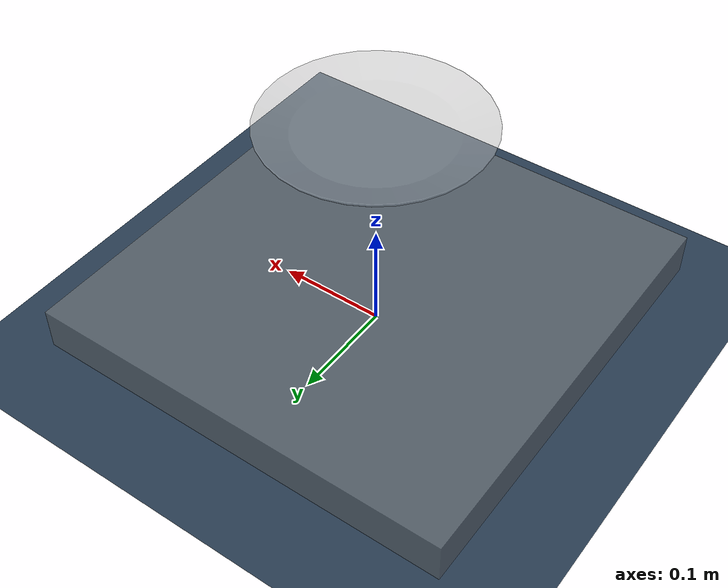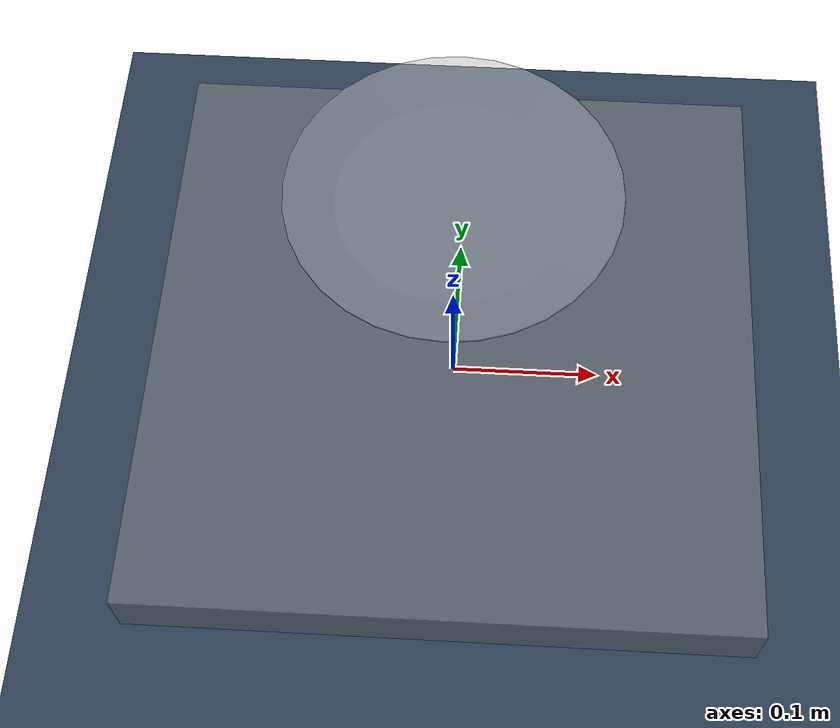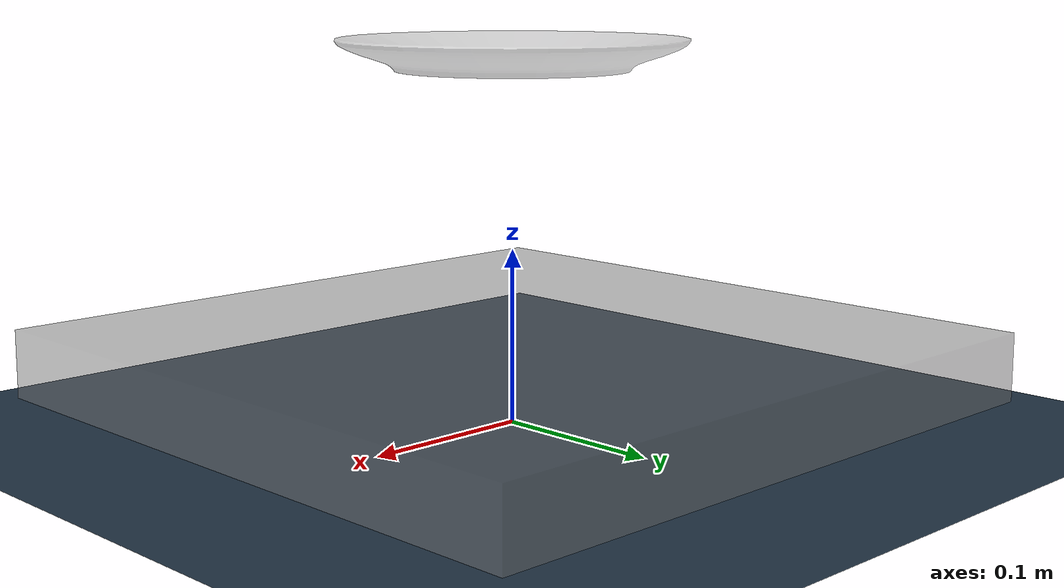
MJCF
<mujoco model="myrmex demo">
  <compiler meshdir="meshes"/>
  <statistic extent="1.5" meansize=".05"/>
  <option timestep="0.001" jacobian="sparse" gravity="0 0 -9.81"/>
  <size nconmax="3000" njmax="4000"/>
  <visual>
    <rgba haze="0.15 0.25 0.35 1"/>
    <quality shadowsize="4096"/>
    <map stiffness="700" shadowscale="0.5" fogstart="10" fogend="15" zfar="40" haze="0.3"/>
    <scale forcewidth="0.001" />
  </visual>

  <asset>
    <texture type="skybox" builtin="gradient" rgb1="0.3 0.5 0.7" rgb2="0 0 0" width="512" height="512"/>
    <texture name="texplane" type="2d" builtin="checker" rgb1=".2 .3 .4" rgb2=".1 0.15 0.2"
      width="512" height="512" mark="cross" markrgb=".8 .8 .8"/>
    <material name="matplane" reflectance="0.3" texture="texplane" texrepeat="1 1" texuniform="true"/>
    <mesh file="plate_8in_col.stl" scale="1 1 1"/>
  </asset>

  <custom>
    <!-- All custom parameters related to contact surfaces have the prefix cs:: -->
    <text name="cs::HydroelasticContactRepresentation" data="kTriangle"/>
    <numeric name="cs::VisualizeSurfaces" data="0"/>
    <!-- If cs::ApplyContactSurfaceForces is 0 Contact Surfaces are only computed for tactile sensors and standard mujoco contacts are used to compute physics -->
    <numeric name="cs::ApplyContactSurfaceForces" data="1"/>
    <numeric name="cs::box1" data="0 1.0 0.05 0.3 0.3"/>
    <numeric name="cs::plate" data="0 1.0 0 0.3 0.3"/>
    <numeric name="cs::myrmex_foam" data="5e4 5.0 0 0.3 0.3"/>

  </custom>

  <worldbody>
    <light directional="true" diffuse=".4 .4 .4" specular="0.1 0.1 0.1" pos="0 0 5.0" dir="0 0 -1" castshadow="false"/>
    <light directional="true" diffuse=".6 .6 .6" specular="0.2 0.2 0.2" pos="0 0 4" dir="0 0 -1"/>
    <geom name="ground" type="plane" size="0 0 1" pos="0 0 0" quat="1 0 0 0" material="matplane" condim="1"/>
    <body name="body_plate" pos="0 0 0.2" >
      <inertial pos="0 0 0.00915" mass="0.375" diaginertia="0.000860 0.000860 0.00171"/>
      <freejoint name="plate_joint"/>
      <geom name="plate" type="mesh" mesh="plate_8in_col" rgba="0.7 0.7 0.7 0.5"/>
    </body>
    <body name="body_myrmex" pos="0 0.0 0.0" >

    <geom name="myrmex_foam" type="box" pos="0 0 0.033" size="0.2 0.2 0.02" rgba="0.5 0.5 0.5 0.5" euler="0 0 0"/>

    </body>
  </worldbody>
</mujoco>
